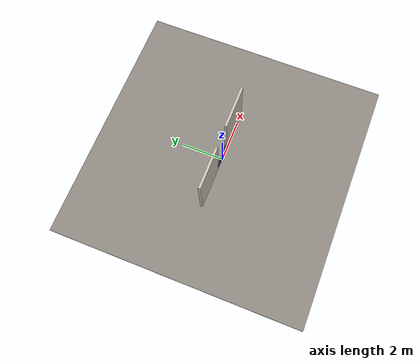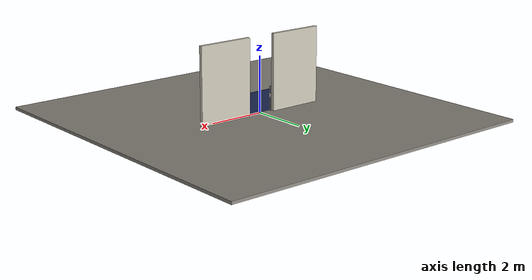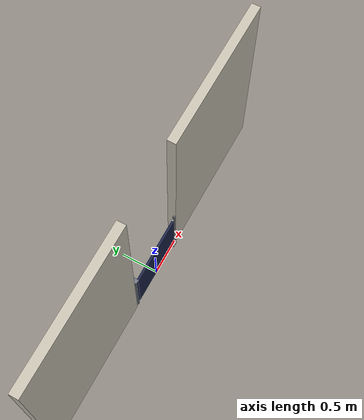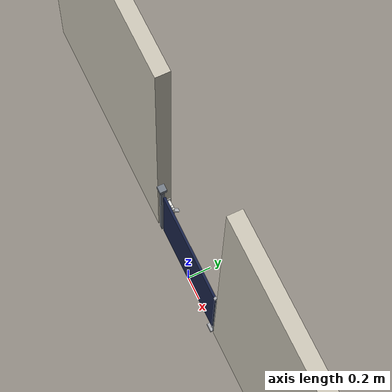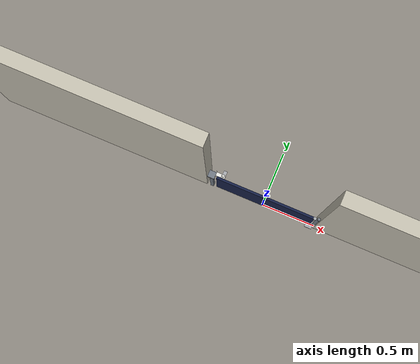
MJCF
<?xml version="1.0" ?>
<mujoco model="db0176_baby_gate_full">
  <compiler angle="radian" meshdir="../../hardware" texturedir="../../textures" autolimits="true" inertiafromgeom="false"/>
  <option timestep="0.002" integrator="implicitfast" cone="elliptic" impratio="10" noslip_iterations="3">
    <flag multiccd="enable"/>
  </option>
  <size memory="16M"/>
  <default>
    <geom condim="4" solref="0.005 1" solimp="0.95 0.99 0.001"/>
    <joint solreflimit="0.005 1" solimplimit="0.95 0.99 0.001"/>
    <tendon solreflimit="0.005 1"/>
    <equality solref="0.002 1"/>
  </default>
  <visual>
    <headlight ambient="0.4 0.4 0.4" diffuse="0.7 0.7 0.7" specular="0.2 0.2 0.2"/>
    <quality shadowsize="4096"/>
    <map znear="0.01" zfar="60"/>
  </visual>
  <asset>
    <material name="mat_floor" rgba="0.55 0.53 0.5 1" specular="0.2" shininess="0.15" reflectance="0"/>
    <material name="mat_wall" rgba="0.78 0.76 0.7 1" specular="0.2" shininess="0.1" reflectance="0"/>
    <material name="mat_leaf" rgba="0.09 0.13 0.28 1" specular="0.2" shininess="0.45" reflectance="0"/>
    <material name="mat_hinge" rgba="0.65 0.66 0.68 1" specular="0.74" shininess="0.5" reflectance="0.36"/>
    <material name="mat_op_pvc" rgba="0.92 0.92 0.9 1" specular="0.2" shininess="0.6" reflectance="0"/>
    <material name="mat_keeper" rgba="0.65 0.66 0.68 1" specular="0.74" shininess="0.5" reflectance="0.36"/>
    <material name="mat_frame" rgba="0.45 0.48 0.52 1" specular="0.32" shininess="0.6" reflectance="0.08"/>
    <texture name="skybox" type="skybox" builtin="gradient" rgb1="0.6 0.7 0.85" rgb2="0.9 0.92 0.95" width="256" height="256"/>
  </asset>
  <worldbody>
    <light name="sun" pos="1.5 -2.5 4" dir="-0.3 0.5 -0.8" directional="true" diffuse="0.8 0.8 0.8" specular="0.3 0.3 0.3" castshadow="true"/>
    <light name="fill" pos="-1.5 2.5 3" dir="0.3 -0.5 -0.7" directional="true" diffuse="0.35 0.35 0.4" castshadow="false"/>
    <camera name="robot_view" pos="0 -1.8345 0.91" xyaxes="1 0 0 0 0.26963 0.962964" fovy="52"/>
    <camera name="far_view" pos="0 1.9155 0.91" xyaxes="-1 0 0 0 -0.26963 0.962964" fovy="52"/>
    <camera name="iso" pos="-1.425 -1.5345 1.21" xyaxes="0.741536 -0.670913 0 0.242917 0.268487 0.932151" fovy="46"/>
    <camera name="detail_handle" pos="-0.224 -0.755 0.895" xyaxes="0.97561 0.219512 0 -0.070934 0.315262 0.94635" fovy="38"/>
    <geom name="floor" type="box" size="6 6 0.05" pos="0 0 -0.05" material="mat_floor" group="0" contype="1" conaffinity="1" friction="0.8 0.005 0.0001" density="2400"/>
    <geom name="wall_left" type="box" size="0.984 0.0575 1.35" pos="-1.516 0.0405 1.35" material="mat_wall" group="0" contype="1" conaffinity="1" friction="0.6 0.005 0.0001" density="800"/>
    <geom name="wall_right" type="box" size="0.999 0.0575 1.35" pos="1.501 0.0405 1.35" material="mat_wall" group="0" contype="1" conaffinity="1" friction="0.6 0.005 0.0001" density="800"/>
    <geom name="pivot_bottom_socket" type="box" size="0.035 0.035 0.019" pos="0.456 0 0.009" material="mat_hinge" group="1" contype="0" conaffinity="0" density="7850"/>
    <geom name="leaf_pin_housing" type="box" size="0.018 0.016 0.03" pos="-0.404 0.045 0.565" material="mat_op_pvc" group="1" contype="0" conaffinity="0" density="1800"/>
    <geom name="leaf_pin_bracket" type="box" size="0.028 0.016 0.01" pos="-0.45 0.045 0.574" material="mat_op_pvc" group="1" contype="0" conaffinity="0" density="1800"/>
    <geom name="leaf_pin_bracket_2" type="box" size="0.028 0.016 0.006" pos="-0.45 0.045 0.544" material="mat_op_pvc" group="1" contype="0" conaffinity="0" density="1800"/>
    <geom name="leaf_pin_post_plate" type="box" size="0.003 0.022 0.05" pos="-0.475 0.045 0.56" material="mat_op_pvc" group="1" contype="0" conaffinity="0" density="1800"/>
    <geom name="post_hinge" type="cylinder" size="0.015 0.415" pos="0.487 0 0.415" material="mat_frame" group="0" contype="1" conaffinity="1" friction="0.6 0.005 0.0001" density="800"/>
    <geom name="post_hinge_cap" type="sphere" size="0.015" pos="0.487 0 0.83" material="mat_frame" group="1" contype="0" conaffinity="0" density="800"/>
    <geom name="post_latch" type="box" size="0.015 0.015 0.415" pos="-0.487 0 0.415" material="mat_frame" group="0" contype="1" conaffinity="1" friction="0.6 0.005 0.0001" density="800"/>
    <geom name="post_latch_cap" type="box" size="0.03 0.03 0.02" pos="-0.487 0 0.85" material="mat_frame" group="1" contype="0" conaffinity="0" density="800"/>
    <geom name="leaf_pin_post_plate_strap_0" type="box" size="0.005 0.0045 0.04" pos="-0.475 0.019 0.56" material="mat_op_pvc" group="1" contype="0" conaffinity="0" density="7850"/>
    <site name="approach_point" pos="0 -1.5 0" quat="1 0 0 0" size="0.05" rgba="0.2 0.9 0.2 0.5" group="4"/>
    <site name="goal_point" pos="0 1.5 0" quat="1 0 0 0" size="0.05" rgba="0.2 0.9 0.2 0.5" group="4"/>
    <site name="door_plane_center" pos="0 0 0.385" quat="1 0 0 0" size="0.02" rgba="0.2 0.9 0.2 0.5" group="4"/>
    <body name="leaf" pos="0.472 0 0">
      <inertial pos="-0.477501 0.001939 0.408425" mass="10.826832" quat="0.707988 0.705707 0.014908 -0.022529" diaginertia="0.501122518 0.781806732 1.279836921"/>
      <joint name="leaf_hinge" type="hinge" axis="0 0 1" pos="-0.016 0 0" limited="true" range="-1.570796 1.570796" damping="1.088869" frictionloss="0.195143" stiffness="5" springref="0" armature="0.02"/>
      <geom name="leaf_slab" type="box" size="0.45 0.01 0.375" pos="-0.466 0 0.405" material="mat_leaf" group="0" contype="1" conaffinity="1" friction="0.4 0.005 0.0001" density="1"/>
      <geom name="pivot_bottom" type="cylinder" size="0.014 0.004" pos="-0.016 0 0.025" material="mat_hinge" group="1" contype="0" conaffinity="0" density="7850"/>
      <geom name="pivot_top" type="cylinder" size="0.014 0.004" pos="-0.016 0 0.784" material="mat_hinge" group="1" contype="0" conaffinity="0" density="7850"/>
      <geom name="leaf_cup_n" type="box" size="0.016 0.004 0.02" pos="-0.876 0.033 0.505" material="mat_keeper" group="0" contype="1" conaffinity="1" friction="0.6 0.005 0.0001" density="7800"/>
      <geom name="leaf_cup_p" type="box" size="0.016 0.004 0.02" pos="-0.876 0.057 0.505" material="mat_keeper" group="0" contype="1" conaffinity="1" friction="0.6 0.005 0.0001" density="7800"/>
      <geom name="leaf_cup_b" type="box" size="0.016 0.016 0.004" pos="-0.876 0.045 0.481" material="mat_keeper" group="0" contype="1" conaffinity="1" friction="0.6 0.005 0.0001" density="7800"/>
      <geom name="leaf_cup_bracket" type="box" size="0.016 0.0095 0.004" pos="-0.876 0.0195 0.505" material="mat_keeper" group="1" contype="0" conaffinity="0" density="7800"/>
      <geom name="leaf_cup_ramp" type="box" size="0.016 0.0301 0.004" pos="-0.876 0.080844 0.502012" quat="0.934722 -0.355381 0 0" material="mat_keeper" group="0" contype="1" conaffinity="1" friction="0.12 0.005 0.0001" density="7800"/>
      <site name="leaf_edge_mid" pos="-0.916 0 0.375" quat="1 0 0 0" size="0.02" rgba="0.2 0.9 0.2 0.5" group="4"/>
    </body>
    <body name="leaf_pin" pos="-0.404 0.045 0.55">
      <inertial pos="0 0 0.037519" mass="0.228168" quat="0.707107 0 0.707107 0" diaginertia="0.000010167 0.000346413 0.000346413"/>
      <joint name="leaf_pin_slide" type="slide" axis="0 0 1" limited="true" range="0 0.05" damping="9.526824" frictionloss="0.25" stiffness="60" springref="-0.016667" armature="0.15"/>
      <geom name="leaf_pin_geom" type="capsule" size="0.006 0.0525" pos="0 0 0.0025" material="mat_op_pvc" group="0" contype="1" conaffinity="1" friction="0.6 0.005 0.0001" density="7850"/>
      <geom name="leaf_pin_knob" type="capsule" size="0.012 0.01" pos="0 0 0.065" material="mat_op_pvc" group="0" contype="1" conaffinity="1" friction="0.6 0.005 0.0001" density="7850"/>
      <site name="leaf_grip_pin" pos="0 0 0.065" quat="1 0 0 0" size="0.012" rgba="0.2 0.9 0.2 0.5" group="4"/>
    </body>
  </worldbody>
  <sensor>
    <jointpos name="leaf_hinge_pos" joint="leaf_hinge"/>
    <jointvel name="leaf_hinge_vel" joint="leaf_hinge"/>
    <jointpos name="leaf_pin_slide_pos" joint="leaf_pin_slide"/>
    <jointvel name="leaf_pin_slide_vel" joint="leaf_pin_slide"/>
  </sensor>
</mujoco>
